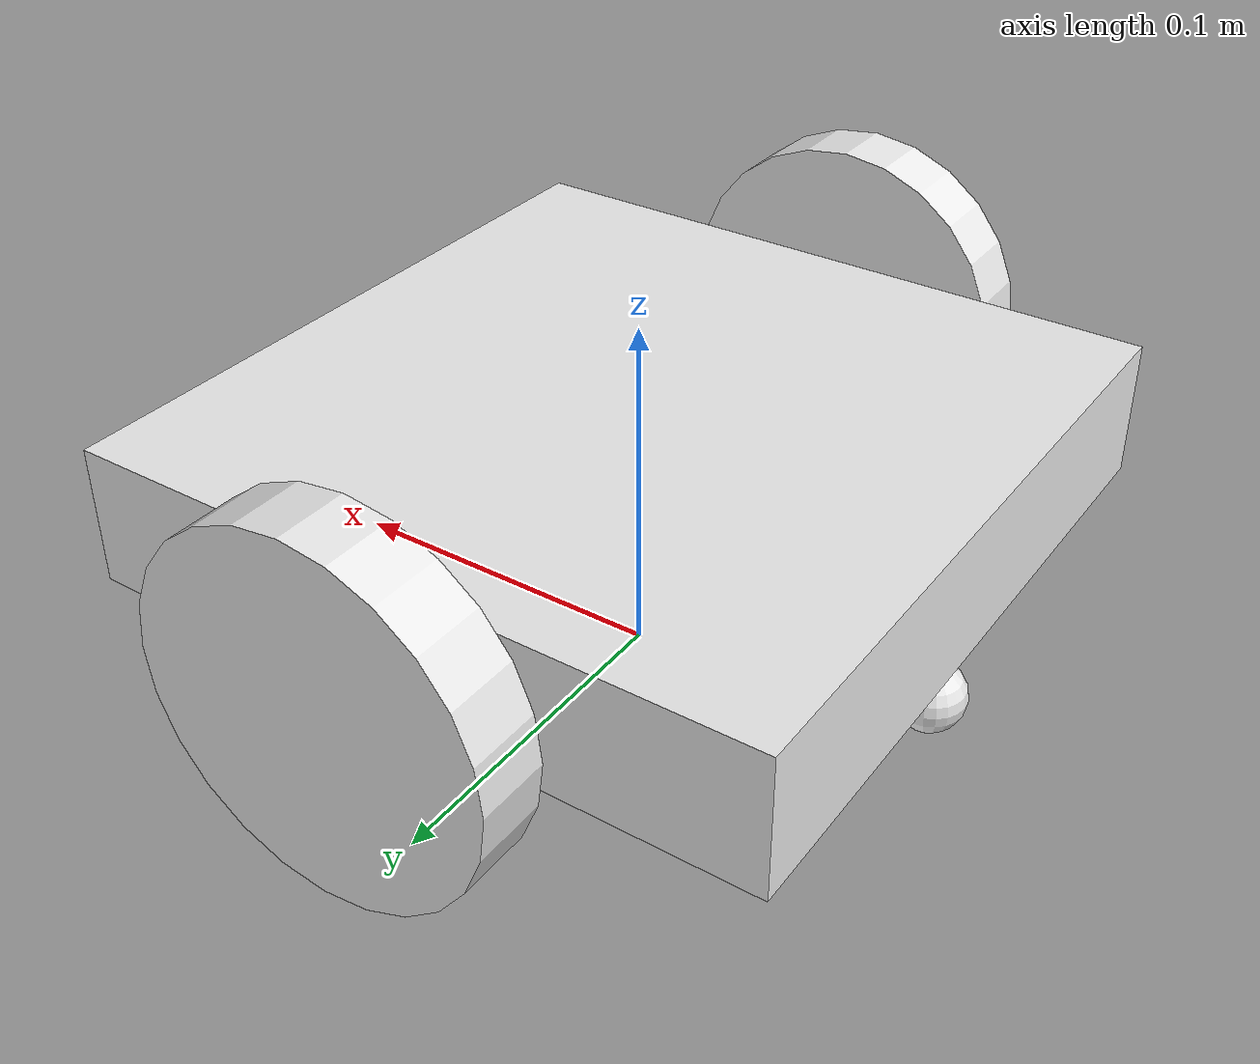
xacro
<?xml version="1.0"?>
<robot name="twr" xmlns:xacro="http://ros.org/wiki/xacro">

    <xacro:include filename="_inertia.macro.xacro"/>
    <xacro:include filename="_colors.xacro"/>
    <xacro:include filename="ros2_control.xacro"/>

    <xacro:property name="mm2m" value="0.001"/>

    <xacro:property name="base_length" value="${200*mm2m}"/>
    <xacro:property name="base_width" value="${200*mm2m}"/>
    <xacro:property name="base_height" value="${40*mm2m}"/>

    <xacro:property name="wheel_radius" value="${50*mm2m}"/>
    <xacro:property name="wheel_width" value="${20*mm2m}"/>

    <xacro:property name="caster_wheel_radius" value="${10*mm2m}"/>

    <!-- === WORLD === -->
    <link name="world_link"/>

    <!-- === BASE === -->
    <joint name="base_joint" type="fixed">
        <parent link="world_link"/>
        <child link="base_link" />
        <origin xyz="0 0 ${wheel_radius+0.01}" rpy="0 0 0"/>
    </joint>

    <link name="base_link">
        <visual>
            <geometry>
                <box size="${base_length} ${base_width} ${base_height}"/>
            </geometry>
            <material name="white"/>
            <origin xyz="0 0 0" rpy="0 0 0"/>
        </visual>

        <collision>
            <geometry>
                <box size="${base_length} ${base_width} ${base_height}"/>
            </geometry>
            <origin xyz="0 0 0" rpy="0 0 0"/>
        </collision>

        <xacro:box_inertia m="1" l="${base_length}" w="${base_width}"  h="${base_height}">
            <origin xyz="0 0 0" rpy="0 0 0"/>
        </xacro:box_inertia>
    </link>

    <!-- === CHASSIS === -->

    <!-- === WHEELS === -->
    <joint name="left_wheel_joint" type="continuous">
        <parent link="base_link"/>
        <child link="left_wheel_link" />
        <origin xyz="0 ${base_width/2 + wheel_width/2 + 0.01} 0" rpy="-${pi/2} 0 0"/>
        <axis xyz="0 0 1"/>
    </joint>

    <link name="left_wheel_link">
        <visual>
            <geometry>
                <cylinder radius="${wheel_radius}" length="${wheel_width}"/>
            </geometry>
            <material name="white"/>
            <origin xyz="0 0 0" rpy="0 0 0"/>
        </visual>

        <collision>
            <geometry>
                <cylinder radius="${wheel_radius}" length="${wheel_width}"/>
            </geometry>
            <origin xyz="0 0 0" rpy="0 0 0"/>
        </collision>

        <xacro:cylinder_inertia m="1" r="${wheel_radius}" l="${wheel_width}">
            <origin xyz="0 0 0" rpy="-${pi/2} 0 0"/>
        </xacro:cylinder_inertia>
    </link>

    <joint name="right_wheel_joint" type="continuous">
        <parent link="base_link"/>
        <child link="right_wheel_link" />
        <origin xyz="0 -${base_width/2 + wheel_width/2 + 0.01} 0" rpy="${pi/2} 0 0"/>
        <axis xyz="0 0 1"/>
    </joint>

    <link name="right_wheel_link">
        <visual>
            <geometry>
                <cylinder radius="${wheel_radius}" length="${wheel_width}"/>
            </geometry>
            <material name="white"/>
            <origin xyz="0 0 0" rpy="0 0 0"/>
        </visual>

        <collision>
            <geometry>
                <cylinder radius="${wheel_radius}" length="${wheel_width}"/>
            </geometry>
            <origin xyz="0 0 0" rpy="0 0 0"/>
        </collision>

        <xacro:cylinder_inertia m="1" r="${wheel_radius}" l="${wheel_width}">
            <origin xyz="0 0 0" rpy="${pi/2} 0 0"/>
        </xacro:cylinder_inertia>
    </link>

    <!-- === CASTER WHEELS === -->
    <joint name="caster_front_wheel_joint" type="continuous">
        <parent link="base_link"/>
        <child link="caster_front_wheel_link"/>
        <origin xyz="${base_length/2-caster_wheel_radius} 0 -${wheel_radius-caster_wheel_radius-1*mm2m}" rpy="0 0 0"/>
        <axis xyz="1 1 1"/>
    </joint>

    <link name="caster_front_wheel_link">
        <visual>
            <geometry>
                <sphere radius="${caster_wheel_radius}"/>
            </geometry>
            <material name="white"/>
            <origin xyz="0 0 0" rpy="0 0 0"/>
        </visual>

        <collision>
            <geometry>
                <sphere radius="${caster_wheel_radius}"/>
            </geometry>
            <origin xyz="0 0 0" rpy="0 0 0"/>
        </collision>

        <xacro:sphere_inertia m="0.01" r="${caster_wheel_radius}">
            <origin xyz="0 0 0" rpy="0 0 0"/>
        </xacro:sphere_inertia>
    </link>

    <joint name="caster_back_wheel_joint" type="continuous">
        <parent link="base_link"/>
        <child link="caster_back_wheel_link"/>
        <origin xyz="-${base_length/2-caster_wheel_radius} 0 -${wheel_radius-caster_wheel_radius-1*mm2m}" rpy="0 0 0"/>
        <axis xyz="1 1 1"/>
    </joint>

    <link name="caster_back_wheel_link">
        <visual>
            <geometry>
                <sphere radius="${caster_wheel_radius}"/>
            </geometry>
            <material name="white"/>
            <origin xyz="0 0 0" rpy="0 0 0"/>
        </visual>

        <collision>
            <geometry>
                <sphere radius="${caster_wheel_radius}"/>
            </geometry>
            <origin xyz="0 0 0" rpy="0 0 0"/>
        </collision>

        <xacro:sphere_inertia m="0.01" r="${caster_wheel_radius}">
            <origin xyz="0 0 0" rpy="0 0 0"/>
        </xacro:sphere_inertia>
    </link>

</robot>

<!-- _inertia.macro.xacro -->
<robot xmlns:xacro="http://www.ros.org/wiki/xacro" >

    <xacro:macro name="box_inertia" params="m l w h *origin">
        <inertial>
            <mass value="${m}"/>
            <inertia
                ixx="${(m/12) * (h*h + l*l)}" ixy="0.0" ixz="0.0"
                iyy="${(m/12) * (w*w + l*l)}" iyz="0.0"
                izz="${(m/12) * (w*w + h*h)}" />
        </inertial>
        <xacro:insert_block name="origin"/>
    </xacro:macro>

    <xacro:macro name="cylinder_inertia" params="m r l *origin">
        <inertial>
            <mass value="${m}"/>
            <inertia
                ixx="${m*l*l/12 + m*r*r/4}" ixy="0.0" ixz="0.0"
                iyy="${m*l*l/12 + m*r*r/4}" iyz="0.0"
                izz="${m*r*r/2}" />
            <xacro:insert_block name="origin"/>
        </inertial>
    </xacro:macro>

    <xacro:macro name="sphere_inertia" params="m r *origin">
        <inertial>
            <mass value="${m}"/>
            <inertia
                ixx="${m*r*r*2/5}" ixy="0.0" ixz="0.0"
                iyy="${m*r*r*2/5}" iyz="0.0"
                izz="${m*r*r*2/5}" />
                <xacro:insert_block name="origin"/>
        </inertial>
    </xacro:macro>

</robot>
